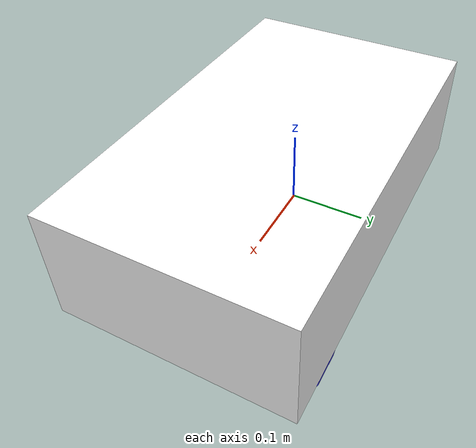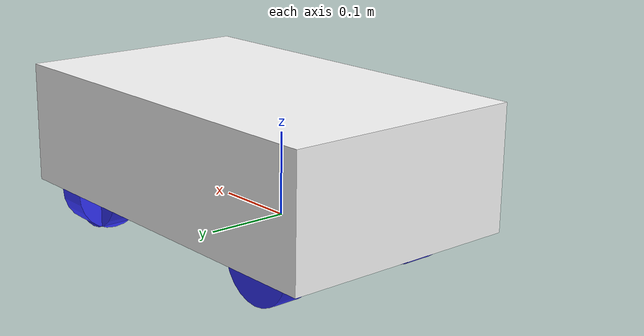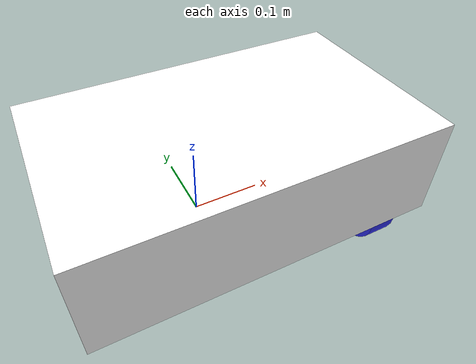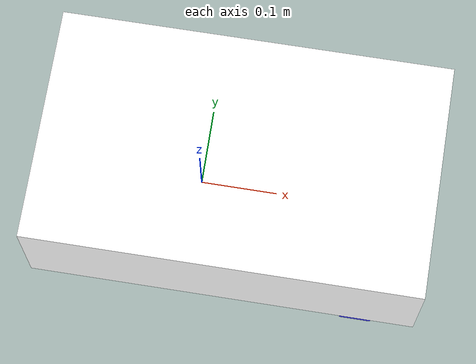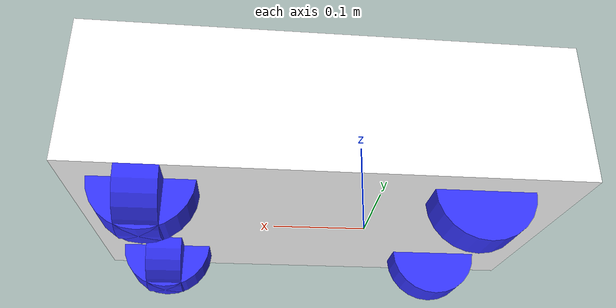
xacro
<?xml version="1.0"?>
<robot xmlns:xacro="http://www.ros.org/wiki/xacro"  name="robot">

    <xacro:include filename="inertial_macros.xacro"/>

    <material name="white">
        <color rgba="1 1 1 1"/>
    </material>

    <material name="orange">
        <color rgba="1 0.3 0.1 1"/>
    </material>

    <material name="blue">
        <color rgba="0.2 0.2 1 1"/>
    </material>

    <material name="black">
        <color rgba="0.0 0.0 0.0 1"/>
    </material>

    <material name="red">
        <color rgba="1 0.0 0.0 1"/>
    </material>

    <!--         BASE LINK           -->

    <link name="base_link"/>

    <!-- CHASSIS LINK -->
    <joint name="chassis_joint" type="fixed">
        <parent link="base_link"/>
        <child link="chassis_link"/>
        <origin xyz="-0.1 0.0 0.0"/>
    </joint>

    <link name="chassis_link">
        <visual>
            <origin xyz="0.15 0 0.075" />
            <geometry>
                <box size="0.5 0.3 0.15"/>
            </geometry>
            <material name="white"/>
        </visual>
        <collision>
            <origin xyz="0.15 0 0.075" />
            <geometry>
                <box size="0.5 0.3 0.15"/>
            </geometry>
            <material name="white"/>
        </collision>
        <xacro:inertial_box mass="0.5" x="0.3" y="0.3" z="0.15">
            <origin xyz="0.15 0.0 0.075" rpy="0.0 0.0 0.0"/>
        </xacro:inertial_box>
    </link>

    <gazebo reference = "chassis_joint" >
        <material>
            Gazebo/White
        </material>
    </gazebo>

    <!-- Front Right Wheel -->
    <joint name="front_right_wheel_joint" type="continuous">
        <origin xyz="0 0 0" rpy="1.5708 0 0" />
        <parent link="right_steering_hinge" />
        <child link="front_right_wheel_link" />
        <axis xyz="0 0 -1" />
        <limit effort="10" velocity="100" />

    </joint>

    <link name="front_right_wheel_link">
        <visual>
            <geometry>
                <cylinder radius="0.05" length="0.04"/>
            </geometry>
            <material name="blue"/>
        </visual>
        <collision>
            <geometry>
                <cylinder radius="0.05" length="0.04"/>
            </geometry>
        </collision>
        <xacro:inertial_cylinder mass="0.1" length="0.04" radius="0.05">
            <origin xyz="0.0 0.0 0.0" rpy="0.0 0.0 0.0"/>
        </xacro:inertial_cylinder>

    </link>

    <gazebo reference = "front_right_wheel_joint" >
        <material>
            Gazebo/Blue
        </material>
    </gazebo>

    <!-- Front Left Wheel -->
    <joint name="front_left_wheel_joint" type="continuous">
        <origin xyz="0 0 0" rpy="1.5708 0 0" />
        <parent link="left_steering_hinge" />
        <child link="front_left_wheel_link" />
        <axis xyz="0 0 -1" />
        <limit effort="10" velocity="100" />
    </joint>

    <link name="front_left_wheel_link">
        <visual>
            <geometry>
                <cylinder radius="0.05" length="0.04"/>
            </geometry>
            <material name="blue"/>
        </visual>
        <collision>
            <geometry>
                <cylinder radius="0.05" length="0.04"/>
            </geometry>
        </collision>
        <xacro:inertial_cylinder mass="0.1" length="0.04" radius="0.05">
            <origin xyz="0.0 0.0 0.0" rpy="0.0 0.0 0.0"/>
        </xacro:inertial_cylinder>

    </link>

    <gazebo reference = "front_left_wheel_link" >
        <material>
            Gazebo/Blue
        </material>
    </gazebo>

    <!-- Rear Right Wheel -->
    <joint name="rear_right_wheel_joint" type="continuous">
        <origin xyz="0 0.1 0" rpy="1.5708 0 0" />
        <parent link="chassis_link" />
        <child link="rear_right_wheel_link" />
        <axis xyz="0 0 -1" />
        <limit effort="10" velocity="100" />
  </joint>

    <link name="rear_right_wheel_link">
        <visual>
            <geometry>
                <cylinder radius="0.05" length="0.04"/>
            </geometry>
            <material name="blue"/>
        </visual>
        <collision>
            <geometry>
                <cylinder radius="0.05" length="0.04"/>
            </geometry>
        </collision>
        <xacro:inertial_cylinder mass="0.1" length="0.04" radius="0.05">
            <origin xyz="0.0 0.0 0.0" rpy="0.0 0.0 0.0"/>
        </xacro:inertial_cylinder>

    </link>

    <gazebo reference = "rear_right_wheel_link" >
        <material>
            Gazebo/Blue
        </material>
    </gazebo>

    <!-- Rear Left Wheel -->
    <joint name="rear_left_wheel_joint" type="continuous">
        <origin xyz="0 -0.1 0" rpy="1.5708 0 0" />
        <parent link="chassis_link" />
        <child link="rear_left_wheel_link" />
        <axis xyz="0 0 -1" />
        <limit effort="10" velocity="100" />
  </joint>

    <link name="rear_left_wheel_link">
        <visual>
            <geometry>
                <cylinder radius="0.05" length="0.04"/>
            </geometry>
            <material name="blue"/>
        </visual>
        <collision>
            <geometry>
                <cylinder radius="0.05" length="0.04"/>
            </geometry>
        </collision>
        <xacro:inertial_cylinder mass="0.1" length="0.04" radius="0.05">
            <origin xyz="0.0 0.0 0.0" rpy="0.0 0.0 0.0"/>
        </xacro:inertial_cylinder>

    </link>

    <gazebo reference = "rear_left_wheel_link" >
        <material>
            Gazebo/Blue
        </material>
    </gazebo>
    <!-- Steering Right -->

    <joint name="left_steering_hinge_joint" type="revolute">
        <origin xyz="0.325 0.1 0" rpy="0 1.5708 0" />
        <parent link="chassis_link" />
        <child link="left_steering_hinge" />
        <axis xyz="-1 0 0" />
        <limit lower="-1.0" upper="1.0" effort="10" velocity="100" />
      </joint>

    <link name="left_steering_hinge">
        <visual>
            <geometry>
                <cylinder radius="0.05" length="0.04"/>
            </geometry>
            <material name="blue"/>
        </visual>
        <collision>
            <geometry>
                <cylinder radius="0.05" length="0.04"/>
            </geometry>
        </collision>
        <xacro:inertial_cylinder mass="0.1" length="0.04" radius="0.05">
            <origin xyz="0.0 0.0 0.0" rpy="0.0 0.0 0.0"/>
        </xacro:inertial_cylinder>

    </link>

    <gazebo reference = "left_steering_hinge" >
        <material>
            Gazebo/Blue
        </material>
    </gazebo>

      <!-- Add the right steering hinge with its joints and tranmissions -->

      <joint name="right_steering_hinge_joint" type="revolute">
        <origin xyz="0.325 -0.1 0" rpy="0 1.5708 0" />
        <parent link="chassis_link" />
        <child link="right_steering_hinge" />
        <axis xyz="-1 0 0" />
        <limit lower="-1.0" upper="1.0" effort="10" velocity="100" />
      </joint>

      <link name="right_steering_hinge">
        <visual>
            <geometry>
                <cylinder radius="0.05" length="0.04"/>
            </geometry>
            <material name="blue"/>
        </visual>
        <collision>
            <geometry>
                <cylinder radius="0.05" length="0.04"/>
            </geometry>
        </collision>
        <xacro:inertial_cylinder mass="0.1" length="0.04" radius="0.05">
            <origin xyz="0.0 0.0 0.0" rpy="0.0 0.0 0.0"/>
        </xacro:inertial_cylinder>

    </link>

    <gazebo reference = "right_steering_hinge" >
        <material>
            Gazebo/Blue
        </material>
    </gazebo>

</robot>
